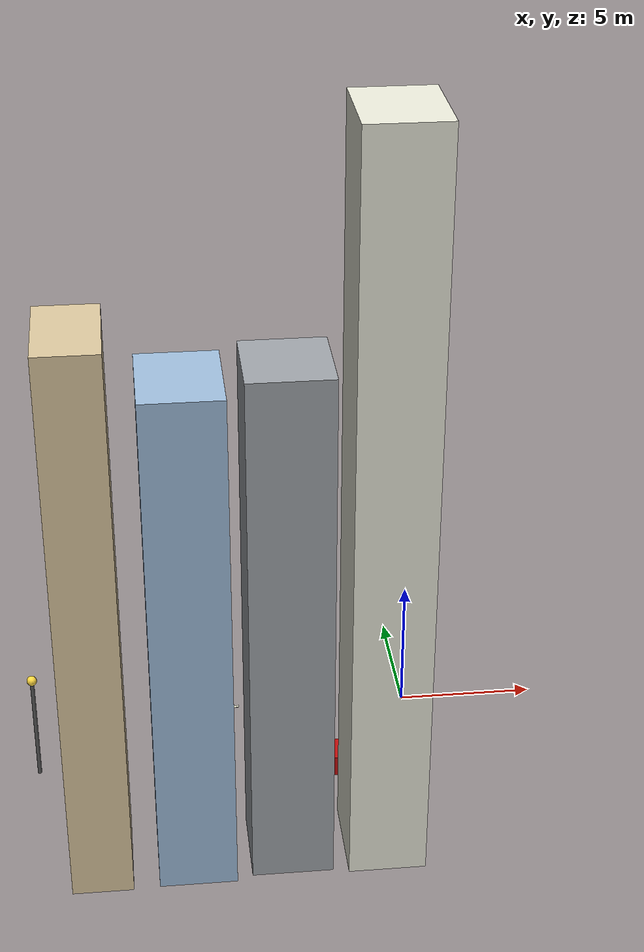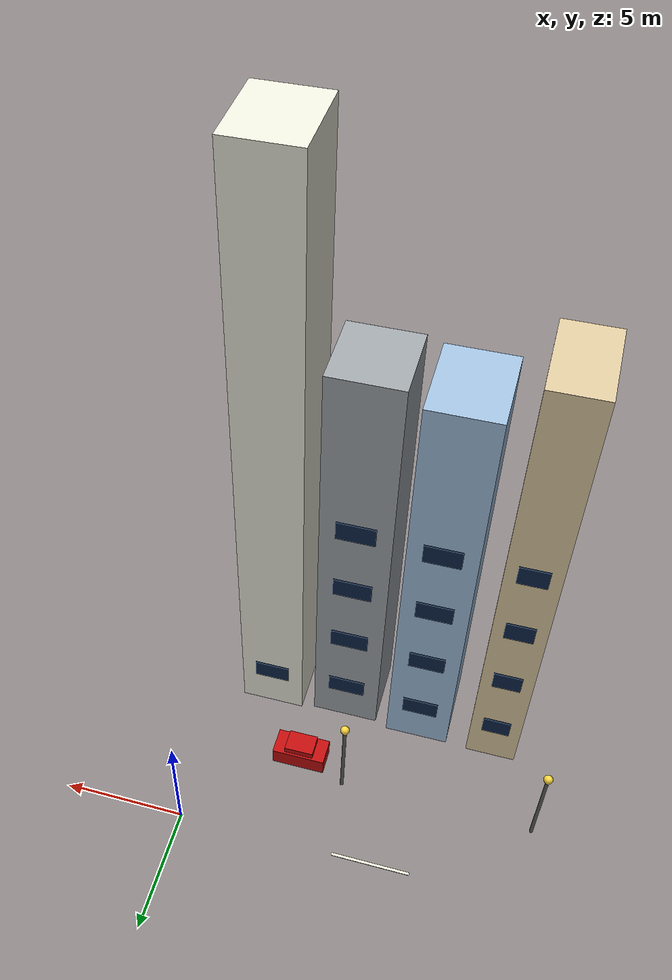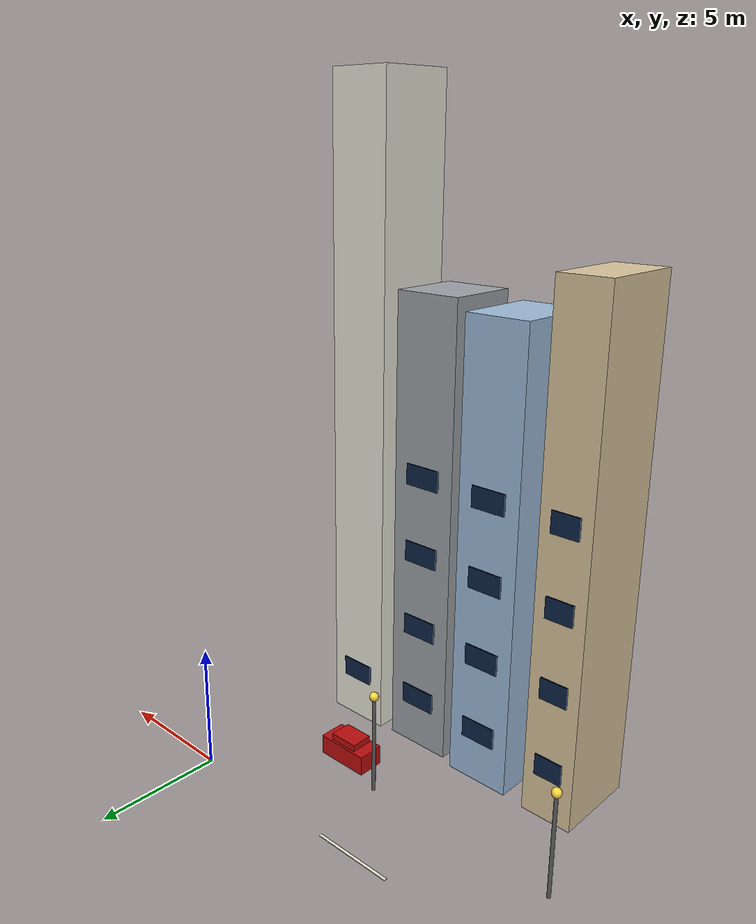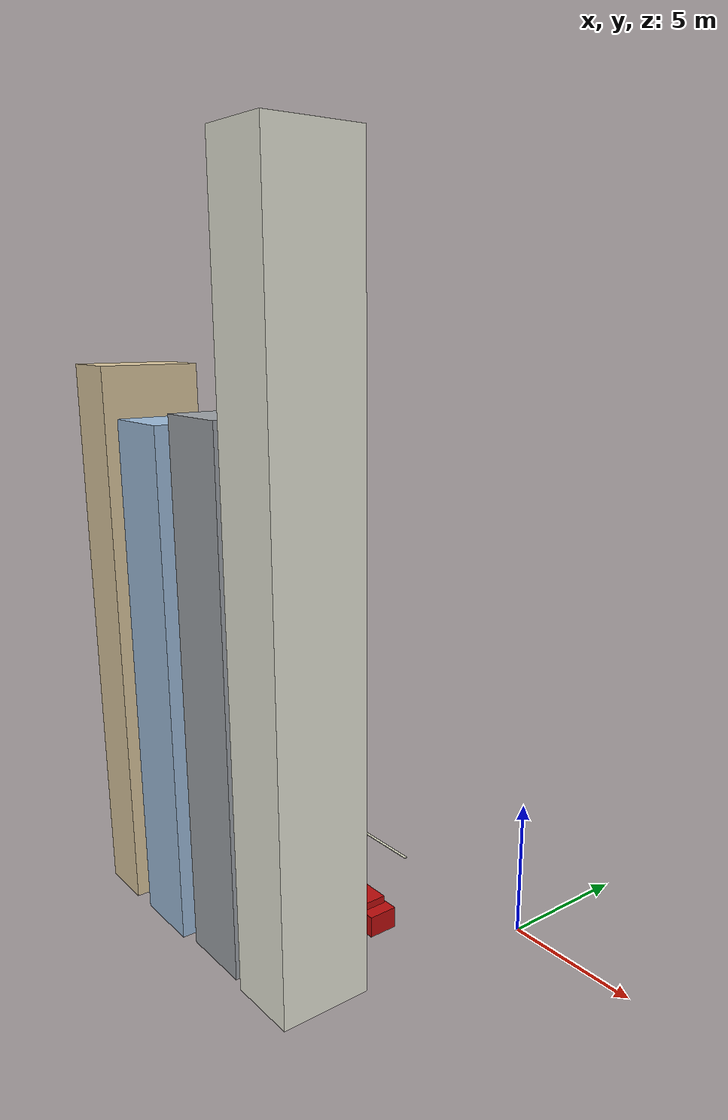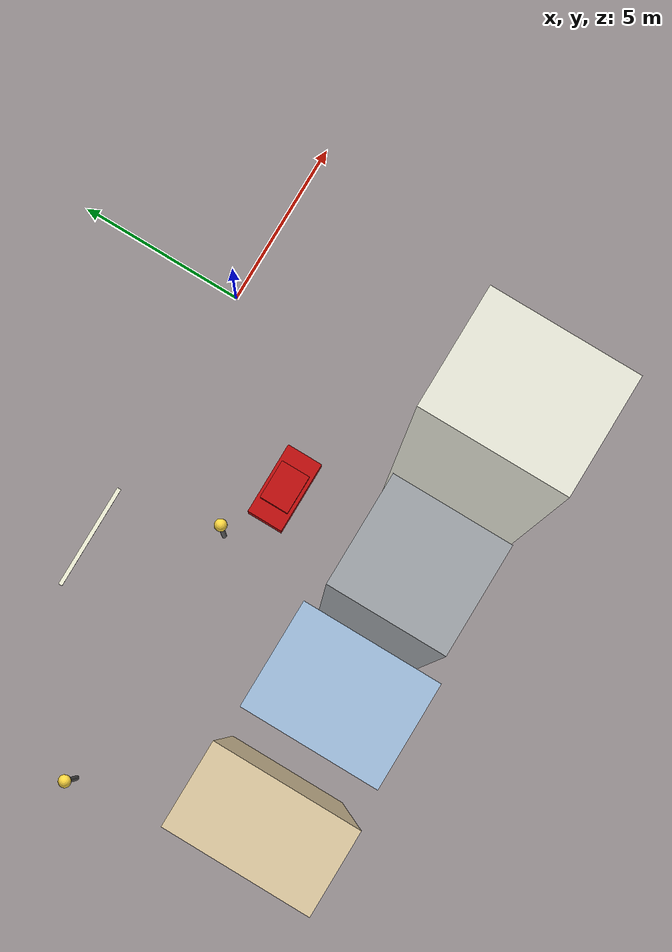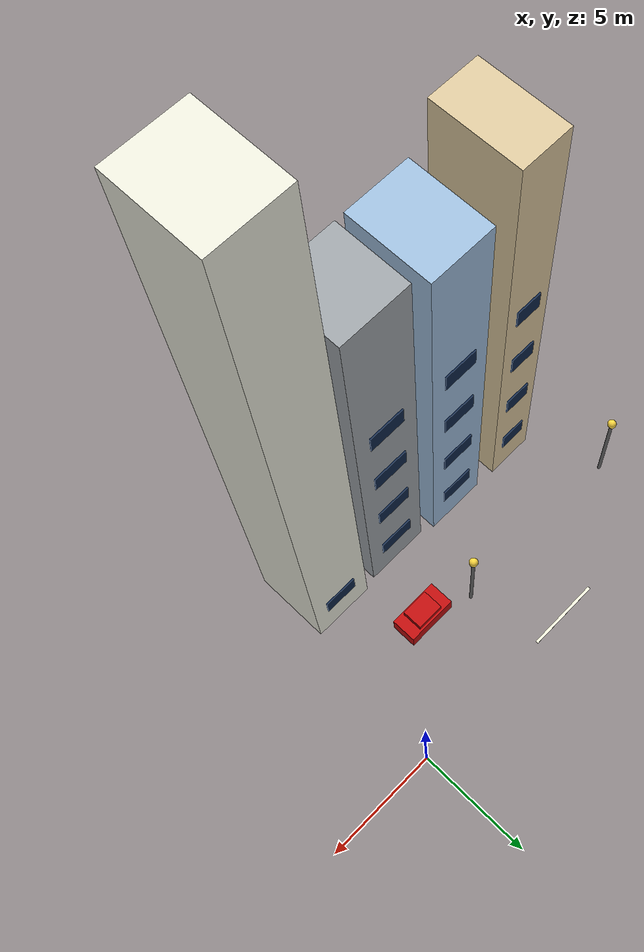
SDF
<sdf version="1.7">
 <world name="urban_street">
  <model name="white_lane_marking_04">
   <static>1</static>
   <pose>-8 0 0.055 0 -0 0</pose>
   <link name="link">
    <collision name="collision"><geometry><box><size>3.2 0.12 0.02</size></box></geometry></collision>
    <visual name="visual">
     <geometry><box><size>3.2 0.12 0.02</size></box></geometry>
     <material>
      <ambient>0.95 0.95 0.85 1</ambient>
      <diffuse>0.95 0.95 0.85 1</diffuse>
      <specular>0.1 0.1 0.1 1</specular>
     </material>
    </visual>
   </link>
  </model>
  <model name="building_facade_10">
   <static>1</static>
   <pose>-11.75 -8.2 10.05 0 -0 0</pose>
   <link name="link">
    <collision name="collision"><geometry><box><size>2.08 3.6 20.09</size></box></geometry></collision>
    <visual name="visual">
     <geometry><box><size>2.08 3.6 20.09</size></box></geometry>
     <material>
      <ambient>0.86 0.78 0.62 1</ambient>
      <diffuse>0.86 0.78 0.62 1</diffuse>
      <specular>0.1 0.1 0.1 1</specular>
     </material>
    </visual>
   </link>
  </model>
  <model name="building_facade_10_window_0">
   <static>1</static>
   <pose>-11.75 -6.37 2.2 0 -0 0</pose>
   <link name="link">
    <collision name="collision"><geometry><box><size>1.14 0.05 0.85</size></box></geometry></collision>
    <visual name="visual">
     <geometry><box><size>1.14 0.05 0.85</size></box></geometry>
     <material>
      <ambient>0.05 0.14 0.28 1</ambient>
      <diffuse>0.05 0.14 0.28 1</diffuse>
      <specular>0.1 0.1 0.1 1</specular>
     </material>
    </visual>
   </link>
  </model>
  <model name="building_facade_10_window_1">
   <static>1</static>
   <pose>-11.75 -6.37 5.4 0 -0 0</pose>
   <link name="link">
    <collision name="collision"><geometry><box><size>1.14 0.05 0.85</size></box></geometry></collision>
    <visual name="visual">
     <geometry><box><size>1.14 0.05 0.85</size></box></geometry>
     <material>
      <ambient>0.05 0.14 0.28 1</ambient>
      <diffuse>0.05 0.14 0.28 1</diffuse>
      <specular>0.1 0.1 0.1 1</specular>
     </material>
    </visual>
   </link>
  </model>
  <model name="building_facade_10_window_2">
   <static>1</static>
   <pose>-11.75 -6.37 8.6 0 -0 0</pose>
   <link name="link">
    <collision name="collision"><geometry><box><size>1.14 0.05 0.85</size></box></geometry></collision>
    <visual name="visual">
     <geometry><box><size>1.14 0.05 0.85</size></box></geometry>
     <material>
      <ambient>0.05 0.14 0.28 1</ambient>
      <diffuse>0.05 0.14 0.28 1</diffuse>
      <specular>0.1 0.1 0.1 1</specular>
     </material>
    </visual>
   </link>
  </model>
  <model name="building_facade_10_window_3">
   <static>1</static>
   <pose>-11.75 -6.37 11.8 0 -0 0</pose>
   <link name="link">
    <collision name="collision"><geometry><box><size>1.14 0.05 0.85</size></box></geometry></collision>
    <visual name="visual">
     <geometry><box><size>1.14 0.05 0.85</size></box></geometry>
     <material>
      <ambient>0.05 0.14 0.28 1</ambient>
      <diffuse>0.05 0.14 0.28 1</diffuse>
      <specular>0.1 0.1 0.1 1</specular>
     </material>
    </visual>
   </link>
  </model>
  <model name="building_facade_11">
   <static>1</static>
   <pose>-8.5 -8.2 9.2 0 -0 0</pose>
   <link name="link">
    <collision name="collision"><geometry><box><size>2.65 3.45 18.41</size></box></geometry></collision>
    <visual name="visual">
     <geometry><box><size>2.65 3.45 18.41</size></box></geometry>
     <material>
      <ambient>0.62 0.74 0.86 1</ambient>
      <diffuse>0.62 0.74 0.86 1</diffuse>
      <specular>0.1 0.1 0.1 1</specular>
     </material>
    </visual>
   </link>
  </model>
  <model name="building_facade_11_window_0">
   <static>1</static>
   <pose>-8.5 -6.45 2.2 0 -0 0</pose>
   <link name="link">
    <collision name="collision"><geometry><box><size>1.46 0.05 0.85</size></box></geometry></collision>
    <visual name="visual">
     <geometry><box><size>1.46 0.05 0.85</size></box></geometry>
     <material>
      <ambient>0.05 0.14 0.28 1</ambient>
      <diffuse>0.05 0.14 0.28 1</diffuse>
      <specular>0.1 0.1 0.1 1</specular>
     </material>
    </visual>
   </link>
  </model>
  <model name="building_facade_11_window_1">
   <static>1</static>
   <pose>-8.5 -6.45 5.4 0 -0 0</pose>
   <link name="link">
    <collision name="collision"><geometry><box><size>1.46 0.05 0.85</size></box></geometry></collision>
    <visual name="visual">
     <geometry><box><size>1.46 0.05 0.85</size></box></geometry>
     <material>
      <ambient>0.05 0.14 0.28 1</ambient>
      <diffuse>0.05 0.14 0.28 1</diffuse>
      <specular>0.1 0.1 0.1 1</specular>
     </material>
    </visual>
   </link>
  </model>
  <model name="building_facade_11_window_2">
   <static>1</static>
   <pose>-8.5 -6.45 8.6 0 -0 0</pose>
   <link name="link">
    <collision name="collision"><geometry><box><size>1.46 0.05 0.85</size></box></geometry></collision>
    <visual name="visual">
     <geometry><box><size>1.46 0.05 0.85</size></box></geometry>
     <material>
      <ambient>0.05 0.14 0.28 1</ambient>
      <diffuse>0.05 0.14 0.28 1</diffuse>
      <specular>0.1 0.1 0.1 1</specular>
     </material>
    </visual>
   </link>
  </model>
  <model name="building_facade_11_window_3">
   <static>1</static>
   <pose>-8.5 -6.45 11.8 0 -0 0</pose>
   <link name="link">
    <collision name="collision"><geometry><box><size>1.46 0.05 0.85</size></box></geometry></collision>
    <visual name="visual">
     <geometry><box><size>1.46 0.05 0.85</size></box></geometry>
     <material>
      <ambient>0.05 0.14 0.28 1</ambient>
      <diffuse>0.05 0.14 0.28 1</diffuse>
      <specular>0.1 0.1 0.1 1</specular>
     </material>
    </visual>
   </link>
  </model>
  <model name="building_facade_12">
   <static>1</static>
   <pose>-5.25 -8.2 9.4 0 -0 0</pose>
   <link name="link">
    <collision name="collision"><geometry><box><size>2.78 2.99 18.8</size></box></geometry></collision>
    <visual name="visual">
     <geometry><box><size>2.78 2.99 18.8</size></box></geometry>
     <material>
      <ambient>0.62 0.64 0.66 1</ambient>
      <diffuse>0.62 0.64 0.66 1</diffuse>
      <specular>0.1 0.1 0.1 1</specular>
     </material>
    </visual>
   </link>
  </model>
  <model name="building_facade_12_window_0">
   <static>1</static>
   <pose>-5.25 -6.67 2.2 0 -0 0</pose>
   <link name="link">
    <collision name="collision"><geometry><box><size>1.53 0.05 0.85</size></box></geometry></collision>
    <visual name="visual">
     <geometry><box><size>1.53 0.05 0.85</size></box></geometry>
     <material>
      <ambient>0.05 0.14 0.28 1</ambient>
      <diffuse>0.05 0.14 0.28 1</diffuse>
      <specular>0.1 0.1 0.1 1</specular>
     </material>
    </visual>
   </link>
  </model>
  <model name="building_facade_12_window_1">
   <static>1</static>
   <pose>-5.25 -6.67 5.4 0 -0 0</pose>
   <link name="link">
    <collision name="collision"><geometry><box><size>1.53 0.05 0.85</size></box></geometry></collision>
    <visual name="visual">
     <geometry><box><size>1.53 0.05 0.85</size></box></geometry>
     <material>
      <ambient>0.05 0.14 0.28 1</ambient>
      <diffuse>0.05 0.14 0.28 1</diffuse>
      <specular>0.1 0.1 0.1 1</specular>
     </material>
    </visual>
   </link>
  </model>
  <model name="building_facade_12_window_2">
   <static>1</static>
   <pose>-5.25 -6.67 8.6 0 -0 0</pose>
   <link name="link">
    <collision name="collision"><geometry><box><size>1.53 0.05 0.85</size></box></geometry></collision>
    <visual name="visual">
     <geometry><box><size>1.53 0.05 0.85</size></box></geometry>
     <material>
      <ambient>0.05 0.14 0.28 1</ambient>
      <diffuse>0.05 0.14 0.28 1</diffuse>
      <specular>0.1 0.1 0.1 1</specular>
     </material>
    </visual>
   </link>
  </model>
  <model name="building_facade_12_window_3">
   <static>1</static>
   <pose>-5.25 -6.67 11.8 0 -0 0</pose>
   <link name="link">
    <collision name="collision"><geometry><box><size>1.53 0.05 0.85</size></box></geometry></collision>
    <visual name="visual">
     <geometry><box><size>1.53 0.05 0.85</size></box></geometry>
     <material>
      <ambient>0.05 0.14 0.28 1</ambient>
      <diffuse>0.05 0.14 0.28 1</diffuse>
      <specular>0.1 0.1 0.1 1</specular>
     </material>
    </visual>
   </link>
  </model>
  <model name="building_facade_13">
   <static>1</static>
   <pose>-2 -8.2 13.27 0 -0 0</pose>
   <link name="link">
    <collision name="collision"><geometry><box><size>2.66 3.3 26.54</size></box></geometry></collision>
    <visual name="visual">
     <geometry><box><size>2.66 3.3 26.54</size></box></geometry>
     <material>
      <ambient>0.92 0.92 0.86 1</ambient>
      <diffuse>0.92 0.92 0.86 1</diffuse>
      <specular>0.1 0.1 0.1 1</specular>
     </material>
    </visual>
   </link>
  </model>
  <model name="building_facade_13_window_0">
   <static>1</static>
   <pose>-2 -6.52 2.2 0 -0 0</pose>
   <link name="link">
    <collision name="collision"><geometry><box><size>1.46 0.05 0.85</size></box></geometry></collision>
    <visual name="visual">
     <geometry><box><size>1.46 0.05 0.85</size></box></geometry>
     <material>
      <ambient>0.05 0.14 0.28 1</ambient>
      <diffuse>0.05 0.14 0.28 1</diffuse>
      <specular>0.1 0.1 0.1 1</specular>
     </material>
    </visual>
   </link>
  </model>
  <model name="street_pole_06">
   <static>1</static>
   <pose>-14 -3.25 2 0 -0 0</pose>
   <link name="link">
    <collision name="collision">
     <geometry><cylinder><radius>0.07</radius><length>4</length></cylinder></geometry>
    </collision>
    <visual name="visual">
     <geometry><cylinder><radius>0.07</radius><length>4</length></cylinder></geometry>
     <material>
      <ambient>0.35 0.35 0.35 1</ambient>
      <diffuse>0.35 0.35 0.35 1</diffuse>
      <specular>0.1 0.1 0.1 1</specular>
     </material>
    </visual>
   </link>
  </model>
  <model name="lamp_head_06">
   <static>1</static>
   <pose>-14 -3.25 4.15 0 -0 0</pose>
   <link name="link">
    <visual name="visual">
     <geometry><sphere><radius>0.18</radius></sphere></geometry>
     <material>
      <ambient>1 0.85 0.25 1</ambient>
      <diffuse>1 0.85 0.25 1</diffuse>
      <specular>0.1 0.1 0.1 1</specular>
     </material>
    </visual>
   </link>
  </model>
  <model name="street_pole_08">
   <static>1</static>
   <pose>-6 -3.25 2 0 -0 0</pose>
   <link name="link">
    <collision name="collision">
     <geometry><cylinder><radius>0.07</radius><length>4</length></cylinder></geometry>
    </collision>
    <visual name="visual">
     <geometry><cylinder><radius>0.07</radius><length>4</length></cylinder></geometry>
     <material>
      <ambient>0.35 0.35 0.35 1</ambient>
      <diffuse>0.35 0.35 0.35 1</diffuse>
      <specular>0.1 0.1 0.1 1</specular>
     </material>
    </visual>
   </link>
  </model>
  <model name="lamp_head_08">
   <static>1</static>
   <pose>-6 -3.25 4.15 0 -0 0</pose>
   <link name="link">
    <visual name="visual">
     <geometry><sphere><radius>0.18</radius></sphere></geometry>
     <material>
      <ambient>1 0.85 0.25 1</ambient>
      <diffuse>1 0.85 0.25 1</diffuse>
      <specular>0.1 0.1 0.1 1</specular>
     </material>
    </visual>
   </link>
  </model>
  <model name="parked_vehicle_body_04">
   <static>1</static>
   <pose>-4 -4.05 0.45 0 -0 0</pose>
   <link name="link">
    <collision name="collision"><geometry><box><size>2.2 1.1 0.8</size></box></geometry></collision>
    <visual name="visual">
     <geometry><box><size>2.2 1.1 0.8</size></box></geometry>
     <material>
      <ambient>0.75 0.05 0.05 1</ambient>
      <diffuse>0.75 0.05 0.05 1</diffuse>
      <specular>0.1 0.1 0.1 1</specular>
     </material>
    </visual>
   </link>
  </model>
  <model name="parked_vehicle_roof_04">
   <static>1</static>
   <pose>-4 -4.05 0.95 0 -0 0</pose>
   <link name="link">
    <collision name="collision"><geometry><box><size>1.2 0.9 0.35</size></box></geometry></collision>
    <visual name="visual">
     <geometry><box><size>1.2 0.9 0.35</size></box></geometry>
     <material>
      <ambient>0.75 0.05 0.05 1</ambient>
      <diffuse>0.75 0.05 0.05 1</diffuse>
      <specular>0.1 0.1 0.1 1</specular>
     </material>
    </visual>
   </link>
  </model>
 </world>
</sdf>
